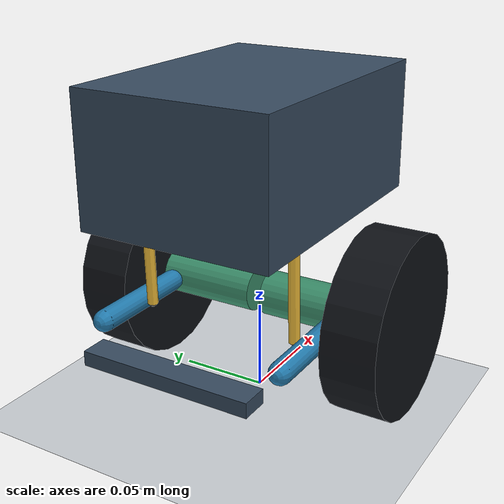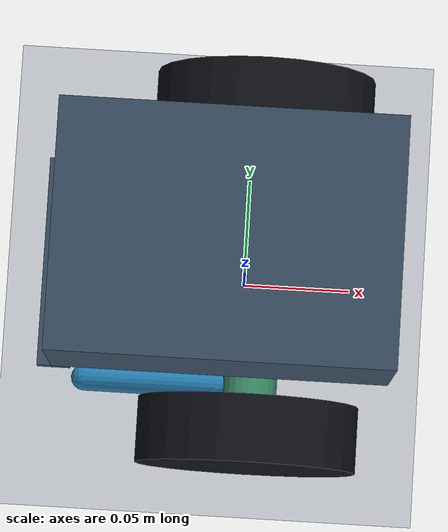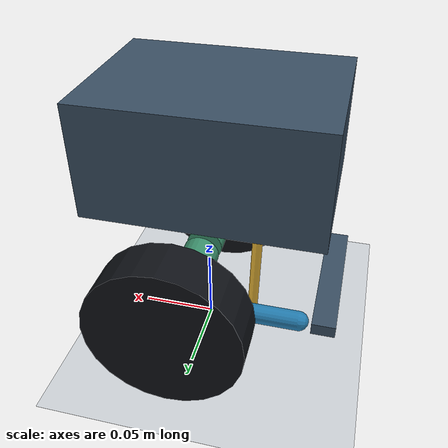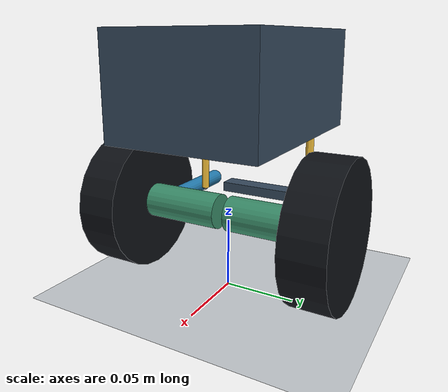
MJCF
<?xml version='1.0' encoding='utf-8'?>
<mujoco model="beni_three_motor_concept">
  <compiler angle="radian" autolimits="true" />
  <option timestep=".001" integrator="implicitfast" gravity="0 0 -9.81" iterations="80" />
  <default>
    <geom friction=".8 .005 .0001" solref=".008 1" solimp=".9 .95 .001" />
  </default>
  <worldbody>
    <light pos="0 -1 2" dir="0 0 -1" />
    <geom name="ground" type="plane" size="4 4 .1" rgba=".8 .82 .84 1" />
    <camera name="overview" pos=".55 -.7 .4" xyaxes=".786 .618 0 -.228 .290 .929" />
    <body name="chassis" pos="0 0 0.0575">
      <freejoint name="root" />
      <inertial pos="0 0 .082" mass="1.46" diaginertia=".004 .005 .006" />
      <geom name="body_collision" type="box" pos="-.0085 0 .09" size=".0735 .0535 .036" rgba=".22 .30 .38 1" />
      <geom name="heel_collision" type="box" pos="-.085 0 -.010" size=".0075 .048 .004" rgba=".22 .30 .38 1" />
      <site name="imu" pos="0 0 .100" size=".003" />
      <body name="shared_yoke" pos="-0.042 0 0.061973678">
        <joint name="height" type="slide" axis="0 0 1" range="-0.0069743001 0.0070032382" damping="4" frictionloss="2" />
        <inertial pos="0 0 .012" mass=".04" diaginertia=".00004 .000003 .00004" />
        <geom type="box" pos="0 0 .012" size=".006 .051 .004" rgba=".96 .44 .13 1" contype="0" conaffinity="0" />
        <site name="left_upper" pos="0 0.044 0" size=".002" />
        <site name="right_upper" pos="0 -0.044 0" size=".002" />
      </body>
      <body name="left_arm" pos="-0.07 0.053 0">
        <joint name="left_suspension" type="hinge" axis="0 1 0" range="-0.41151685 0.48551812" damping=".006" frictionloss=".005" />
        <inertial pos="0.055 -0.012 0" mass=".17" diaginertia=".00010 .00015 .00018" />
        <geom type="capsule" fromto="0 0 0 .06 0 0" size=".006" rgba=".14 .49 .69 1" />
        <geom name="left_motor_case" type="cylinder" pos="0.075 -0.0185 0" size=".0125 .0305" quat=".70710678 .70710678 0 0" rgba=".23 .56 .42 1" />
        <site name="left_lower" pos="0.03 -0.009 0" size=".002" />
        <body name="left_wheel" pos="0.075 0.022 0">
          <joint name="left_wheel_spin" type="hinge" axis="0 1 0" damping=".0004" frictionloss=".002" />
          <inertial pos="0 0 0" mass=".08" diaginertia=".000056 .00010 .000056" />
          <geom name="left_tire" type="cylinder" size="0.05 0.015" quat=".70710678 .70710678 0 0" rgba=".06 .07 .09 1" condim="4" />
        </body>
      </body>
      <body name="right_arm" pos="-0.07 -0.053 0">
        <joint name="right_suspension" type="hinge" axis="0 1 0" range="-0.41151685 0.48551812" damping=".006" frictionloss=".005" />
        <inertial pos="0.055 0.012 0" mass=".17" diaginertia=".00010 .00015 .00018" />
        <geom type="capsule" fromto="0 0 0 .06 0 0" size=".006" rgba=".14 .49 .69 1" />
        <geom name="right_motor_case" type="cylinder" pos="0.075 0.0185 0" size=".0125 .0305" quat=".70710678 .70710678 0 0" rgba=".23 .56 .42 1" />
        <site name="right_lower" pos="0.03 0.009 0" size=".002" />
        <body name="right_wheel" pos="0.075 -0.022 0">
          <joint name="right_wheel_spin" type="hinge" axis="0 1 0" damping=".0004" frictionloss=".002" />
          <inertial pos="0 0 0" mass=".08" diaginertia=".000056 .00010 .000056" />
          <geom name="right_tire" type="cylinder" size="0.05 0.015" quat=".70710678 .70710678 0 0" rgba=".06 .07 .09 1" condim="4" />
        </body>
      </body>
    </body>
  </worldbody>
  <tendon>
    <spatial name="left_shock" limited="true" range="0.0552 0.07" stiffness="4900.0" damping="80.0" springlength=".069" width=".003" rgba=".93 .73 .22 1">
      <site site="left_upper" />
      <site site="left_lower" />
    </spatial>
    <spatial name="right_shock" limited="true" range="0.0552 0.07" stiffness="4900.0" damping="80.0" springlength=".069" width=".003" rgba=".93 .73 .22 1">
      <site site="right_upper" />
      <site site="right_lower" />
    </spatial>
  </tendon>
  <actuator>
    <motor name="left_drive" joint="left_wheel_spin" gear="1" ctrllimited="true" ctrlrange="-.6 .6" />
    <motor name="right_drive" joint="right_wheel_spin" gear="1" ctrllimited="true" ctrlrange="-.6 .6" />
    <position name="common_height" joint="height" kp="15000" kv="100" ctrlrange="-0.0069743001 0.0070032382" forcerange="-120 120" />
  </actuator>
  <sensor>
    <gyro name="body_gyro" site="imu" />
    <accelerometer name="body_acceleration" site="imu" />
    <jointpos name="left_wheel_spin_position" joint="left_wheel_spin" />
    <jointvel name="left_wheel_spin_velocity" joint="left_wheel_spin" />
    <jointpos name="right_wheel_spin_position" joint="right_wheel_spin" />
    <jointvel name="right_wheel_spin_velocity" joint="right_wheel_spin" />
    <jointpos name="left_suspension_position" joint="left_suspension" />
    <jointvel name="left_suspension_velocity" joint="left_suspension" />
    <jointpos name="right_suspension_position" joint="right_suspension" />
    <jointvel name="right_suspension_velocity" joint="right_suspension" />
    <jointpos name="height_position" joint="height" />
    <jointvel name="height_velocity" joint="height" />
  </sensor>
  <keyframe>
    <key name="nominal" qpos="0 0 0.0575 1 0 0 0 0 0.10016742 0 0.10016742 0" ctrl="0 0 0" />
  </keyframe>
</mujoco>
